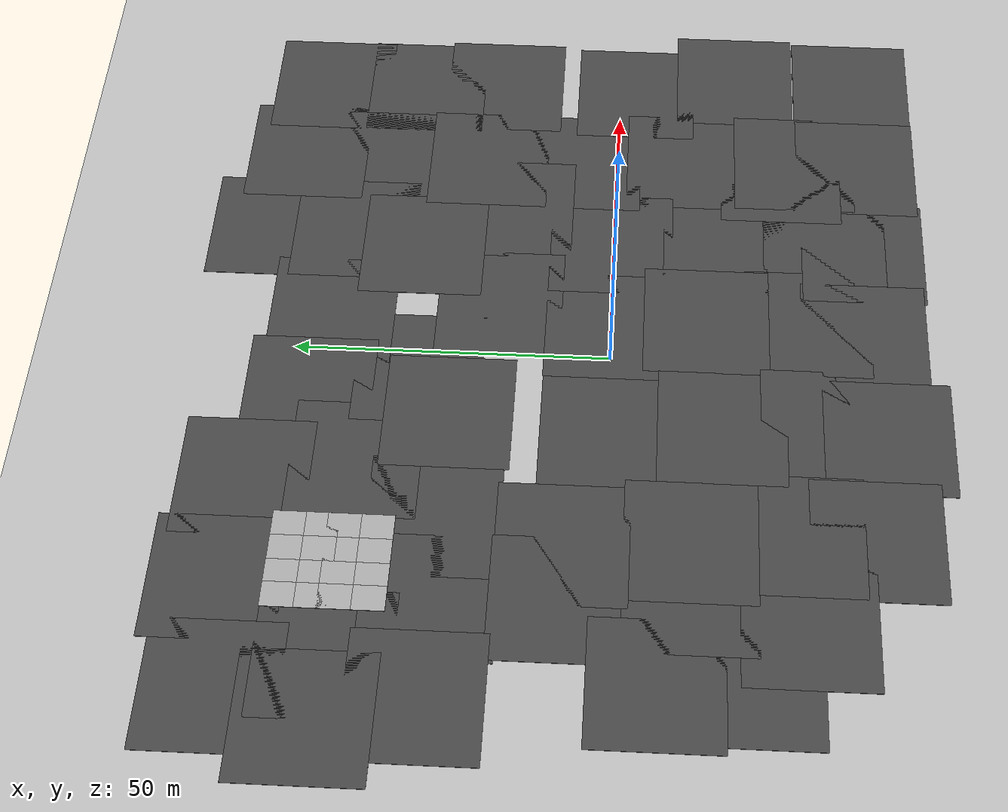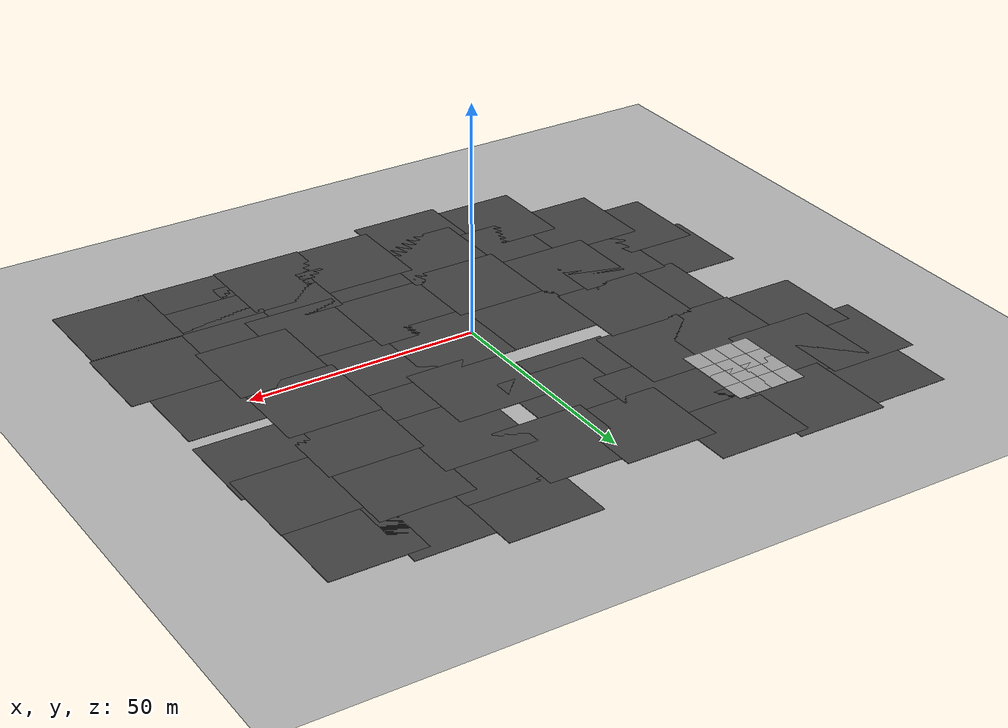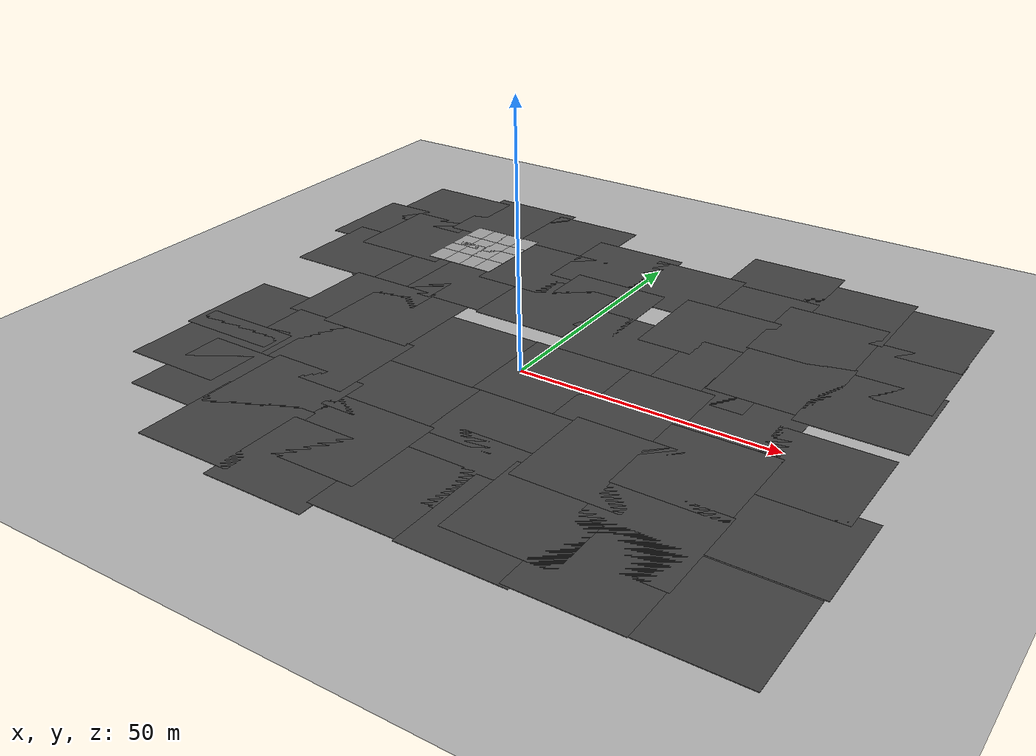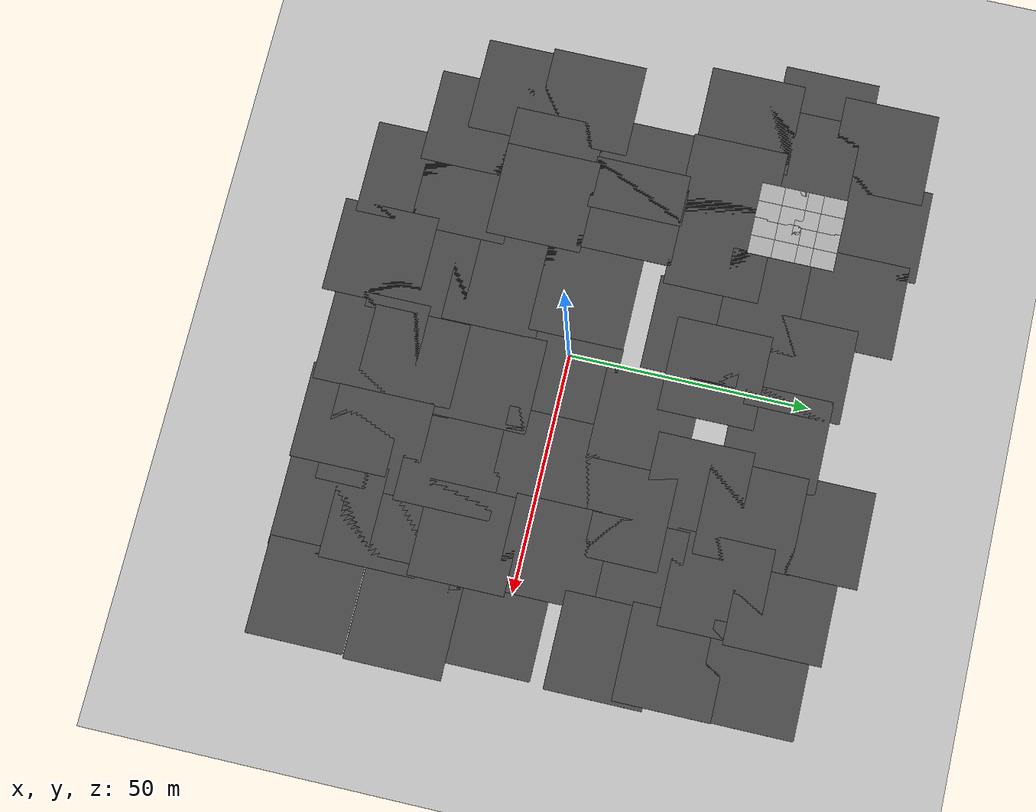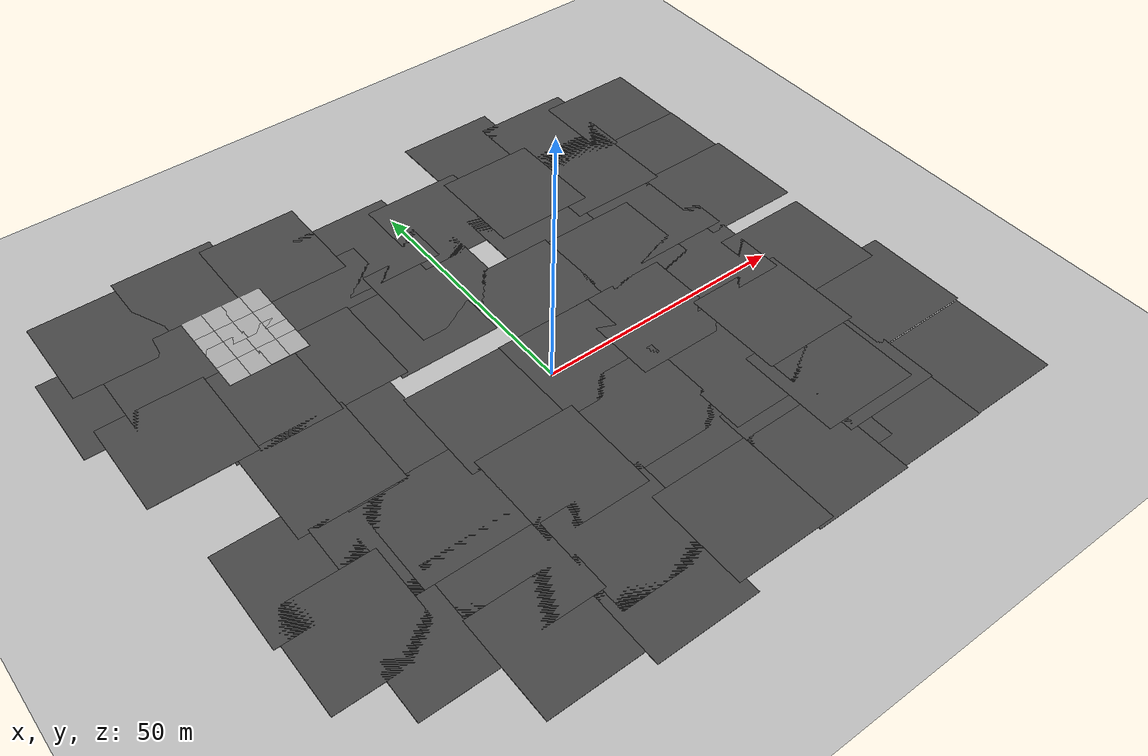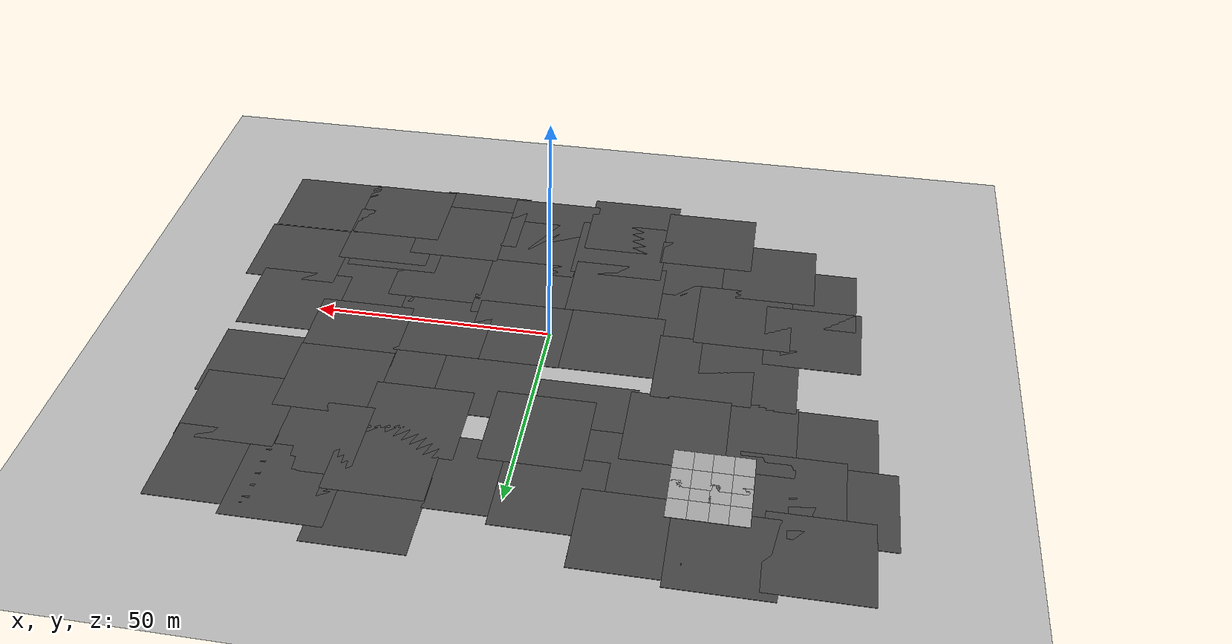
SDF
<sdf version="1.6">
 <world name="default">
  <light name="sun" type="directional">
   <pose>0 0 10 0 -0 0</pose>
   <diffuse>0.8 0.8 0.8 1</diffuse>
   <specular>0.1 0.1 0.1 1</specular>
   <attenuation>
    <range>1000</range>
    <constant>0.9</constant>
    <linear>0.01</linear>
    <quadratic>0.001</quadratic>
   </attenuation>
   <direction>-0.5 0.5 -1</direction>
  </light>
  <scene>
   <grid>0</grid>
   <origin_visual>0</origin_visual>
   <ambient>0.592 0.624 0.635 1</ambient>
   <sky><clouds><speed>12</speed></clouds></sky>
   <background>0.35 0.35 0.35 1</background>
   <shadows>1</shadows>
  </scene>
  <model name="ground_plane">
   <static>1</static>
   <link name="link">
    <collision name="collision">
     <geometry><plane><normal>0 0 1</normal><size>100 100</size></plane></geometry>
     <surface><friction><ode><mu>100</mu><mu2>50</mu2></ode></friction></surface>
    </collision>
    <visual name="visual">
     <cast_shadows>0</cast_shadows>
     <geometry><plane><normal>0 0 1</normal><size>100 100</size></plane></geometry>
     <material>
      <script><uri>file://media/materials/scripts/gazebo.material</uri><name>Gazebo/Grey</name></script>
     </material>
    </visual>
   </link>
  </model>
  <gravity>0 0 -9.8</gravity>
  <magnetic_field>6e-06 2.3e-05 -4.2e-05</magnetic_field>
  <atmosphere type="adiabatic"/>
  <physics name="default_physics" default="0" type="ode">
   <max_step_size>0.001</max_step_size>
   <real_time_factor>1</real_time_factor>
   <real_time_update_rate>1000</real_time_update_rate>
  </physics>
  <scene><ambient>0.4 0.4 0.4 1</ambient><background>0.7 0.7 0.7 1</background><shadows>1</shadows></scene>
  <spherical_coordinates>
   <surface_model>EARTH_WGS84</surface_model>
   <latitude_deg>49.9</latitude_deg>
   <longitude_deg>8.9</longitude_deg>
   <elevation>0</elevation>
   <heading_deg>0</heading_deg>
  </spherical_coordinates>
  <model name="asphalt_plane_0_clone_clone">
   <static>1</static>
   <link name="link">
    <collision name="collision"><geometry><box><size>20 20 0.1</size></box></geometry></collision>
    <visual name="visual">
     <cast_shadows>0</cast_shadows>
     <geometry><box><size>20 20 0.1</size></box></geometry>
     <material>
      <script>
       <uri>model://asphalt_plane/materials/scripts</uri>
       <uri>model://asphalt_plane/materials/textures</uri>
       <name>vrc/asphalt</name>
      </script>
     </material>
    </visual>
   </link>
   <pose>6.37821 0.583634 0 0 -0 0</pose>
  </model>
  <model name="asphalt_plane_0_clone_clone_0">
   <static>1</static>
   <link name="link">
    <collision name="collision"><geometry><box><size>20 20 0.1</size></box></geometry></collision>
    <visual name="visual">
     <cast_shadows>0</cast_shadows>
     <geometry><box><size>20 20 0.1</size></box></geometry>
     <material>
      <script>
       <uri>model://asphalt_plane/materials/scripts</uri>
       <uri>model://asphalt_plane/materials/textures</uri>
       <name>vrc/asphalt</name>
      </script>
     </material>
    </visual>
   </link>
   <pose>10.2031 18.113 0 0 -0 0</pose>
  </model>
  <model name="asphalt_plane_0_clone_clone_1">
   <static>1</static>
   <link name="link">
    <collision name="collision"><geometry><box><size>20 20 0.1</size></box></geometry></collision>
    <visual name="visual">
     <cast_shadows>0</cast_shadows>
     <geometry><box><size>20 20 0.1</size></box></geometry>
     <material>
      <script>
       <uri>model://asphalt_plane/materials/scripts</uri>
       <uri>model://asphalt_plane/materials/textures</uri>
       <name>vrc/asphalt</name>
      </script>
     </material>
    </visual>
   </link>
   <pose>22.9208 0.603421 0 0 -0 0</pose>
  </model>
  <model name="asphalt_plane_0_clone_clone_3">
   <static>1</static>
   <link name="link">
    <collision name="collision"><geometry><box><size>20 20 0.1</size></box></geometry></collision>
    <visual name="visual">
     <cast_shadows>0</cast_shadows>
     <geometry><box><size>20 20 0.1</size></box></geometry>
     <material>
      <script>
       <uri>model://asphalt_plane/materials/scripts</uri>
       <uri>model://asphalt_plane/materials/textures</uri>
       <name>vrc/asphalt</name>
      </script>
     </material>
    </visual>
   </link>
   <pose>8.11641 -15.0475 0 0 -0 0</pose>
  </model>
  <model name="asphalt_plane_0_clone_0">
   <static>1</static>
   <link name="link">
    <collision name="collision"><geometry><box><size>20 20 0.1</size></box></geometry></collision>
    <visual name="visual">
     <cast_shadows>0</cast_shadows>
     <geometry><box><size>20 20 0.1</size></box></geometry>
     <material>
      <script>
       <uri>model://asphalt_plane/materials/scripts</uri>
       <uri>model://asphalt_plane/materials/textures</uri>
       <name>vrc/asphalt</name>
      </script>
     </material>
    </visual>
   </link>
   <pose>-13.5558 0.477425 0 0 -0 0</pose>
  </model>
  <model name="asphalt_plane_0_clone_clone_1_clone">
   <static>1</static>
   <link name="link">
    <collision name="collision"><geometry><box><size>20 20 0.1</size></box></geometry></collision>
    <visual name="visual">
     <cast_shadows>0</cast_shadows>
     <geometry><box><size>20 20 0.1</size></box></geometry>
     <material>
      <script>
       <uri>model://asphalt_plane/materials/scripts</uri>
       <uri>model://asphalt_plane/materials/textures</uri>
       <name>vrc/asphalt</name>
      </script>
     </material>
    </visual>
   </link>
   <pose>26.991 -17.9924 0 0 -0 0</pose>
  </model>
  <model name="asphalt_plane_0_clone_clone_1_clone_0">
   <static>1</static>
   <link name="link">
    <collision name="collision"><geometry><box><size>20 20 0.1</size></box></geometry></collision>
    <visual name="visual">
     <cast_shadows>0</cast_shadows>
     <geometry><box><size>20 20 0.1</size></box></geometry>
     <material>
      <script>
       <uri>model://asphalt_plane/materials/scripts</uri>
       <uri>model://asphalt_plane/materials/textures</uri>
       <name>vrc/asphalt</name>
      </script>
     </material>
    </visual>
   </link>
   <pose>29.6101 17.2232 0 0 -0 0</pose>
  </model>
  <model name="asphalt_plane_0_clone_clone_1_clone_1">
   <static>1</static>
   <link name="link">
    <collision name="collision"><geometry><box><size>20 20 0.1</size></box></geometry></collision>
    <visual name="visual">
     <cast_shadows>0</cast_shadows>
     <geometry><box><size>20 20 0.1</size></box></geometry>
     <material>
      <script>
       <uri>model://asphalt_plane/materials/scripts</uri>
       <uri>model://asphalt_plane/materials/textures</uri>
       <name>vrc/asphalt</name>
      </script>
     </material>
    </visual>
   </link>
   <pose>40.1025 6.22208 0 0 -0 0</pose>
  </model>
  <model name="asphalt_plane_0_clone_clone_1_clone_2">
   <static>1</static>
   <link name="link">
    <collision name="collision"><geometry><box><size>20 20 0.1</size></box></geometry></collision>
    <visual name="visual">
     <cast_shadows>0</cast_shadows>
     <geometry><box><size>20 20 0.1</size></box></geometry>
     <material>
      <script>
       <uri>model://asphalt_plane/materials/scripts</uri>
       <uri>model://asphalt_plane/materials/textures</uri>
       <name>vrc/asphalt</name>
      </script>
     </material>
    </visual>
   </link>
   <pose>41.0911 -11.5315 0 0 -0 0</pose>
  </model>
  <model name="asphalt_plane_0_clone_clone_1_clone_3">
   <static>1</static>
   <link name="link">
    <collision name="collision"><geometry><box><size>20 20 0.1</size></box></geometry></collision>
    <visual name="visual">
     <cast_shadows>0</cast_shadows>
     <geometry><box><size>20 20 0.1</size></box></geometry>
     <material>
      <script>
       <uri>model://asphalt_plane/materials/scripts</uri>
       <uri>model://asphalt_plane/materials/textures</uri>
       <name>vrc/asphalt</name>
      </script>
     </material>
    </visual>
   </link>
   <pose>-31.7511 -12.9041 0 0 -0 0</pose>
  </model>
  <model name="asphalt_plane_0_clone_clone_1_clone_4">
   <static>1</static>
   <link name="link">
    <collision name="collision"><geometry><box><size>20 20 0.1</size></box></geometry></collision>
    <visual name="visual">
     <cast_shadows>0</cast_shadows>
     <geometry><box><size>20 20 0.1</size></box></geometry>
     <material>
      <script>
       <uri>model://asphalt_plane/materials/scripts</uri>
       <uri>model://asphalt_plane/materials/textures</uri>
       <name>vrc/asphalt</name>
      </script>
     </material>
    </visual>
   </link>
   <pose>-33.0894 6.09046 0 0 -0 0</pose>
  </model>
  <model name="asphalt_plane_0_clone_clone_1_clone_5">
   <static>1</static>
   <link name="link">
    <collision name="collision"><geometry><box><size>20 20 0.1</size></box></geometry></collision>
    <visual name="visual">
     <cast_shadows>0</cast_shadows>
     <geometry><box><size>20 20 0.1</size></box></geometry>
     <material>
      <script>
       <uri>model://asphalt_plane/materials/scripts</uri>
       <uri>model://asphalt_plane/materials/textures</uri>
       <name>vrc/asphalt</name>
      </script>
     </material>
    </visual>
   </link>
   <pose>-10.8691 24.6966 0 0 -0 0</pose>
  </model>
  <model name="asphalt_plane_0_clone_clone_1_clone_6">
   <static>1</static>
   <link name="link">
    <collision name="collision"><geometry><box><size>20 20 0.1</size></box></geometry></collision>
    <visual name="visual">
     <cast_shadows>0</cast_shadows>
     <geometry><box><size>20 20 0.1</size></box></geometry>
     <material>
      <script>
       <uri>model://asphalt_plane/materials/scripts</uri>
       <uri>model://asphalt_plane/materials/textures</uri>
       <name>vrc/asphalt</name>
      </script>
     </material>
    </visual>
   </link>
   <pose>-3 30 0 0 -0 0</pose>
  </model>
  <model name="asphalt_plane_0_clone_clone_1_clone_7">
   <static>1</static>
   <link name="link">
    <collision name="collision"><geometry><box><size>20 20 0.1</size></box></geometry></collision>
    <visual name="visual">
     <cast_shadows>0</cast_shadows>
     <geometry><box><size>20 20 0.1</size></box></geometry>
     <material>
      <script>
       <uri>model://asphalt_plane/materials/scripts</uri>
       <uri>model://asphalt_plane/materials/textures</uri>
       <name>vrc/asphalt</name>
      </script>
     </material>
    </visual>
   </link>
   <pose>-29.326 25.3742 0 0 -0 0</pose>
  </model>
  <model name="asphalt_plane_0_clone_clone_1_clone_8">
   <static>1</static>
   <link name="link">
    <collision name="collision"><geometry><box><size>20 20 0.1</size></box></geometry></collision>
    <visual name="visual">
     <cast_shadows>0</cast_shadows>
     <geometry><box><size>20 20 0.1</size></box></geometry>
     <material>
      <script>
       <uri>model://asphalt_plane/materials/scripts</uri>
       <uri>model://asphalt_plane/materials/textures</uri>
       <name>vrc/asphalt</name>
      </script>
     </material>
    </visual>
   </link>
   <pose>40.2279 21.9338 0 0 -0 0</pose>
  </model>
  <model name="asphalt_plane_0_clone_clone_1_clone_9">
   <static>1</static>
   <link name="link">
    <collision name="collision"><geometry><box><size>20 20 0.1</size></box></geometry></collision>
    <visual name="visual">
     <cast_shadows>0</cast_shadows>
     <geometry><box><size>20 20 0.1</size></box></geometry>
     <material>
      <script>
       <uri>model://asphalt_plane/materials/scripts</uri>
       <uri>model://asphalt_plane/materials/textures</uri>
       <name>vrc/asphalt</name>
      </script>
     </material>
    </visual>
   </link>
   <pose>21.4043 31.4114 0 0 -0 0</pose>
  </model>
  <model name="asphalt_plane_0_clone_clone_1_clone_3_clone">
   <static>1</static>
   <link name="link">
    <collision name="collision"><geometry><box><size>20 20 0.1</size></box></geometry></collision>
    <visual name="visual">
     <cast_shadows>0</cast_shadows>
     <geometry><box><size>20 20 0.1</size></box></geometry>
     <material>
      <script>
       <uri>model://asphalt_plane/materials/scripts</uri>
       <uri>model://asphalt_plane/materials/textures</uri>
       <name>vrc/asphalt</name>
      </script>
     </material>
    </visual>
   </link>
   <pose>-11.8014 -17.5637 0 0 -0 0</pose>
  </model>
  <model name="asphalt_plane_0_clone_clone_1_clone_3_clone_0">
   <static>1</static>
   <link name="link">
    <collision name="collision"><geometry><box><size>20 20 0.1</size></box></geometry></collision>
    <visual name="visual">
     <cast_shadows>0</cast_shadows>
     <geometry><box><size>20 20 0.1</size></box></geometry>
     <material>
      <script>
       <uri>model://asphalt_plane/materials/scripts</uri>
       <uri>model://asphalt_plane/materials/textures</uri>
       <name>vrc/asphalt</name>
      </script>
     </material>
    </visual>
   </link>
   <pose>41.4998 -29.7064 0 0 -0 0</pose>
  </model>
  <model name="asphalt_plane_0_clone_clone_1_clone_3_clone_1">
   <static>1</static>
   <link name="link">
    <collision name="collision"><geometry><box><size>20 20 0.1</size></box></geometry></collision>
    <visual name="visual">
     <cast_shadows>0</cast_shadows>
     <geometry><box><size>20 20 0.1</size></box></geometry>
     <material>
      <script>
       <uri>model://asphalt_plane/materials/scripts</uri>
       <uri>model://asphalt_plane/materials/textures</uri>
       <name>vrc/asphalt</name>
      </script>
     </material>
    </visual>
   </link>
   <pose>26.1918 -34.3701 0 0 -0 0</pose>
  </model>
  <model name="asphalt_plane_0_clone_clone_1_clone_3_clone_2">
   <static>1</static>
   <link name="link">
    <collision name="collision"><geometry><box><size>20 20 0.1</size></box></geometry></collision>
    <visual name="visual">
     <cast_shadows>0</cast_shadows>
     <geometry><box><size>20 20 0.1</size></box></geometry>
     <material>
      <script>
       <uri>model://asphalt_plane/materials/scripts</uri>
       <uri>model://asphalt_plane/materials/textures</uri>
       <name>vrc/asphalt</name>
      </script>
     </material>
    </visual>
   </link>
   <pose>41.1356 -40.2 0 0 -0 0</pose>
  </model>
  <model name="asphalt_plane_0_clone_clone_1_clone_3_clone_3">
   <static>1</static>
   <link name="link">
    <collision name="collision"><geometry><box><size>20 20 0.1</size></box></geometry></collision>
    <visual name="visual">
     <cast_shadows>0</cast_shadows>
     <geometry><box><size>20 20 0.1</size></box></geometry>
     <material>
      <script>
       <uri>model://asphalt_plane/materials/scripts</uri>
       <uri>model://asphalt_plane/materials/textures</uri>
       <name>vrc/asphalt</name>
      </script>
     </material>
    </visual>
   </link>
   <pose>22.9353 -40.6198 0 0 -0 0</pose>
  </model>
  <model name="asphalt_plane_0_clone_clone_1_clone_3_clone_4">
   <static>1</static>
   <link name="link">
    <collision name="collision"><geometry><box><size>20 20 0.1</size></box></geometry></collision>
    <visual name="visual">
     <cast_shadows>0</cast_shadows>
     <geometry><box><size>20 20 0.1</size></box></geometry>
     <material>
      <script>
       <uri>model://asphalt_plane/materials/scripts</uri>
       <uri>model://asphalt_plane/materials/textures</uri>
       <name>vrc/asphalt</name>
      </script>
     </material>
    </visual>
   </link>
   <pose>8.35018 -31.2659 0 0 -0 0</pose>
  </model>
  <model name="asphalt_plane_0_clone_clone_1_clone_3_clone_5">
   <static>1</static>
   <link name="link">
    <collision name="collision"><geometry><box><size>20 20 0.1</size></box></geometry></collision>
    <visual name="visual">
     <cast_shadows>0</cast_shadows>
     <geometry><box><size>20 20 0.1</size></box></geometry>
     <material>
      <script>
       <uri>model://asphalt_plane/materials/scripts</uri>
       <uri>model://asphalt_plane/materials/textures</uri>
       <name>vrc/asphalt</name>
      </script>
     </material>
    </visual>
   </link>
   <pose>6.27442 -40.183 0 0 -0 0</pose>
  </model>
  <model name="asphalt_plane_0_clone_clone_1_clone_3_clone_6">
   <static>1</static>
   <link name="link">
    <collision name="collision"><geometry><box><size>20 20 0.1</size></box></geometry></collision>
    <visual name="visual">
     <cast_shadows>0</cast_shadows>
     <geometry><box><size>20 20 0.1</size></box></geometry>
     <material>
      <script>
       <uri>model://asphalt_plane/materials/scripts</uri>
       <uri>model://asphalt_plane/materials/textures</uri>
       <name>vrc/asphalt</name>
      </script>
     </material>
    </visual>
   </link>
   <pose>-10.7792 -33.517 0 0 -0 0</pose>
  </model>
  <model name="asphalt_plane_0_clone_clone_1_clone_3_clone_7">
   <static>1</static>
   <link name="link">
    <collision name="collision"><geometry><box><size>20 20 0.1</size></box></geometry></collision>
    <visual name="visual">
     <cast_shadows>0</cast_shadows>
     <geometry><box><size>20 20 0.1</size></box></geometry>
     <material>
      <script>
       <uri>model://asphalt_plane/materials/scripts</uri>
       <uri>model://asphalt_plane/materials/textures</uri>
       <name>vrc/asphalt</name>
      </script>
     </material>
    </visual>
   </link>
   <pose>-29.9691 -28.748 0 0 -0 0</pose>
  </model>
  <model name="asphalt_plane_0_clone_clone_1_clone_3_clone_8">
   <static>1</static>
   <link name="link">
    <collision name="collision"><geometry><box><size>20 20 0.1</size></box></geometry></collision>
    <visual name="visual">
     <cast_shadows>0</cast_shadows>
     <geometry><box><size>20 20 0.1</size></box></geometry>
     <material>
      <script>
       <uri>model://asphalt_plane/materials/scripts</uri>
       <uri>model://asphalt_plane/materials/textures</uri>
       <name>vrc/asphalt</name>
      </script>
     </material>
    </visual>
   </link>
   <pose>-30.2733 -40.503 0 0 -0 0</pose>
  </model>
  <model name="asphalt_plane_0_clone_clone_1_clone_3_clone_9">
   <static>1</static>
   <link name="link">
    <collision name="collision"><geometry><box><size>20 20 0.1</size></box></geometry></collision>
    <visual name="visual">
     <cast_shadows>0</cast_shadows>
     <geometry><box><size>20 20 0.1</size></box></geometry>
     <material>
      <script>
       <uri>model://asphalt_plane/materials/scripts</uri>
       <uri>model://asphalt_plane/materials/textures</uri>
       <name>vrc/asphalt</name>
      </script>
     </material>
    </visual>
   </link>
   <pose>-12.4234 -43.1011 0 0 -0 0</pose>
  </model>
  <model name="asphalt_plane_0_clone_clone_1_clone_3_clone_10">
   <static>1</static>
   <link name="link">
    <collision name="collision"><geometry><box><size>20 20 0.1</size></box></geometry></collision>
    <visual name="visual">
     <cast_shadows>0</cast_shadows>
     <geometry><box><size>20 20 0.1</size></box></geometry>
     <material>
      <script>
       <uri>model://asphalt_plane/materials/scripts</uri>
       <uri>model://asphalt_plane/materials/textures</uri>
       <name>vrc/asphalt</name>
      </script>
     </material>
    </visual>
   </link>
   <pose>-39.914 -12.9126 0 0 -0 0</pose>
  </model>
  <model name="asphalt_plane_0_clone_clone_1_clone_3_clone_11">
   <static>1</static>
   <link name="link">
    <collision name="collision"><geometry><box><size>20 20 0.1</size></box></geometry></collision>
    <visual name="visual">
     <cast_shadows>0</cast_shadows>
     <geometry><box><size>20 20 0.1</size></box></geometry>
     <material>
      <script>
       <uri>model://asphalt_plane/materials/scripts</uri>
       <uri>model://asphalt_plane/materials/textures</uri>
       <name>vrc/asphalt</name>
      </script>
     </material>
    </visual>
   </link>
   <pose>39.7398 39.4432 0 0 -0 0</pose>
  </model>
  <model name="asphalt_plane_0_clone_clone_1_clone_3_clone_12">
   <static>1</static>
   <link name="link">
    <collision name="collision"><geometry><box><size>20 20 0.1</size></box></geometry></collision>
    <visual name="visual">
     <cast_shadows>0</cast_shadows>
     <geometry><box><size>20 20 0.1</size></box></geometry>
     <material>
      <script>
       <uri>model://asphalt_plane/materials/scripts</uri>
       <uri>model://asphalt_plane/materials/textures</uri>
       <name>vrc/asphalt</name>
      </script>
     </material>
    </visual>
   </link>
   <pose>-41.9881 6.39224 0 0 -0 0</pose>
  </model>
  <model name="asphalt_plane_0_clone_clone_1_clone_3_clone_13">
   <static>1</static>
   <link name="link">
    <collision name="collision"><geometry><box><size>20 20 0.1</size></box></geometry></collision>
    <visual name="visual">
     <cast_shadows>0</cast_shadows>
     <geometry><box><size>20 20 0.1</size></box></geometry>
     <material>
      <script>
       <uri>model://asphalt_plane/materials/scripts</uri>
       <uri>model://asphalt_plane/materials/textures</uri>
       <name>vrc/asphalt</name>
      </script>
     </material>
    </visual>
   </link>
   <pose>-42.5242 24.9399 0 0 -0 0</pose>
  </model>
  <model name="asphalt_plane_0_clone_clone_1_clone_3_clone_14">
   <static>1</static>
   <link name="link">
    <collision name="collision"><geometry><box><size>20 20 0.1</size></box></geometry></collision>
    <visual name="visual">
     <cast_shadows>0</cast_shadows>
     <geometry><box><size>20 20 0.1</size></box></geometry>
     <material>
      <script>
       <uri>model://asphalt_plane/materials/scripts</uri>
       <uri>model://asphalt_plane/materials/textures</uri>
       <name>vrc/asphalt</name>
      </script>
     </material>
    </visual>
   </link>
   <pose>-19.9765 38.1058 0 0 -0 0</pose>
  </model>
  <model name="asphalt_plane_0_clone_clone_1_clone_3_clone_15">
   <static>1</static>
   <link name="link">
    <collision name="collision"><geometry><box><size>20 20 0.1</size></box></geometry></collision>
    <visual name="visual">
     <cast_shadows>0</cast_shadows>
     <geometry><box><size>20 20 0.1</size></box></geometry>
     <material>
      <script>
       <uri>model://asphalt_plane/materials/scripts</uri>
       <uri>model://asphalt_plane/materials/textures</uri>
       <name>vrc/asphalt</name>
      </script>
     </material>
    </visual>
   </link>
   <pose>38.8642 -27.432 0 0 -0 0</pose>
  </model>
  <model name="asphalt_plane_0_clone_clone_1_clone_3_clone_11_clone">
   <static>1</static>
   <link name="link">
    <collision name="collision"><geometry><box><size>20 20 0.1</size></box></geometry></collision>
    <visual name="visual">
     <cast_shadows>0</cast_shadows>
     <geometry><box><size>20 20 0.1</size></box></geometry>
     <material>
      <script>
       <uri>model://asphalt_plane/materials/scripts</uri>
       <uri>model://asphalt_plane/materials/textures</uri>
       <name>vrc/asphalt</name>
      </script>
     </material>
    </visual>
   </link>
   <pose>24.1835 43.1447 0 0 -0 0</pose>
  </model>
  <model name="asphalt_plane_0_clone_clone_1_clone_3_clone_11_clone_0">
   <static>1</static>
   <link name="link">
    <collision name="collision"><geometry><box><size>20 20 0.1</size></box></geometry></collision>
    <visual name="visual">
     <cast_shadows>0</cast_shadows>
     <geometry><box><size>20 20 0.1</size></box></geometry>
     <material>
      <script>
       <uri>model://asphalt_plane/materials/scripts</uri>
       <uri>model://asphalt_plane/materials/textures</uri>
       <name>vrc/asphalt</name>
      </script>
     </material>
    </visual>
   </link>
   <pose>40.5649 52.9156 0 0 -0 0</pose>
  </model>
  <model name="asphalt_plane_0_clone_clone_1_clone_3_clone_11_clone_1">
   <static>1</static>
   <link name="link">
    <collision name="collision"><geometry><box><size>20 20 0.1</size></box></geometry></collision>
    <visual name="visual">
     <cast_shadows>0</cast_shadows>
     <geometry><box><size>20 20 0.1</size></box></geometry>
     <material>
      <script>
       <uri>model://asphalt_plane/materials/scripts</uri>
       <uri>model://asphalt_plane/materials/textures</uri>
       <name>vrc/asphalt</name>
      </script>
     </material>
    </visual>
   </link>
   <pose>7.57971 44.8403 0 0 -0 0</pose>
  </model>
  <model name="asphalt_plane_0_clone_clone_1_clone_3_clone_11_clone_0_clone">
   <static>1</static>
   <link name="link">
    <collision name="collision"><geometry><box><size>20 20 0.1</size></box></geometry></collision>
    <visual name="visual">
     <cast_shadows>0</cast_shadows>
     <geometry><box><size>20 20 0.1</size></box></geometry>
     <material>
      <script>
       <uri>model://asphalt_plane/materials/scripts</uri>
       <uri>model://asphalt_plane/materials/textures</uri>
       <name>vrc/asphalt</name>
      </script>
     </material>
    </visual>
   </link>
   <pose>24.047 56.8673 0 0 -0 0</pose>
  </model>
  <model name="asphalt_plane_1">
   <static>1</static>
   <link name="link">
    <collision name="collision"><geometry><box><size>20 20 0.1</size></box></geometry></collision>
    <visual name="visual">
     <cast_shadows>0</cast_shadows>
     <geometry><box><size>20 20 0.1</size></box></geometry>
     <material>
      <script>
       <uri>model://asphalt_plane/materials/scripts</uri>
       <uri>model://asphalt_plane/materials/textures</uri>
       <name>vrc/asphalt</name>
      </script>
     </material>
    </visual>
   </link>
   <pose>60.0043 -19.8285 0 0 -0 0</pose>
  </model>
  <model name="mud_box">
   <static>1</static>
   <link name="link">
    <collision name="collision"><geometry><box><size>8 10 0.2</size></box></geometry></collision>
    <visual name="visual_1">
     <pose>-2 2.5 0 0 -0 0</pose>
     <cast_shadows>0</cast_shadows>
     <geometry><box><size>4 5 0.2</size></box></geometry>
     <material>
      <script>
       <uri>model://mud_box/materials/scripts</uri>
       <uri>model://mud_box/materials/textures</uri>
       <name>vrc/mud</name>
      </script>
     </material>
    </visual>
    <visual name="visual_2">
     <pose>2 2.5 0 0 -0 0</pose>
     <cast_shadows>0</cast_shadows>
     <geometry><box><size>4 5 0.2</size></box></geometry>
     <material>
      <script>
       <uri>model://mud_box/materials/scripts</uri>
       <uri>model://mud_box/materials/textures</uri>
       <name>vrc/mud</name>
      </script>
     </material>
    </visual>
    <visual name="visual_3">
     <pose>2 -2.5 0 0 -0 0</pose>
     <cast_shadows>0</cast_shadows>
     <geometry><box><size>4 5 0.2</size></box></geometry>
     <material>
      <script>
       <uri>model://mud_box/materials/scripts</uri>
       <uri>model://mud_box/materials/textures</uri>
       <name>vrc/mud</name>
      </script>
     </material>
    </visual>
    <visual name="visual_4">
     <pose>-2 -2.5 0 0 -0 0</pose>
     <cast_shadows>0</cast_shadows>
     <geometry><box><size>4 5 0.2</size></box></geometry>
     <material>
      <script>
       <uri>model://mud_box/materials/scripts</uri>
       <uri>model://mud_box/materials/textures</uri>
       <name>vrc/mud</name>
      </script>
     </material>
    </visual>
   </link>
   <pose>-33.5181 35.9736 0 0 -0 0</pose>
  </model>
  <model name="mud_box_clone">
   <static>1</static>
   <link name="link">
    <collision name="collision"><geometry><box><size>8 10 0.2</size></box></geometry></collision>
    <visual name="visual_1">
     <pose>-2 2.5 0 0 -0 0</pose>
     <cast_shadows>0</cast_shadows>
     <geometry><box><size>4 5 0.2</size></box></geometry>
     <material>
      <script>
       <uri>model://mud_box/materials/scripts</uri>
       <uri>model://mud_box/materials/textures</uri>
       <name>vrc/mud</name>
      </script>
     </material>
    </visual>
    <visual name="visual_2">
     <pose>2 2.5 0 0 -0 0</pose>
     <cast_shadows>0</cast_shadows>
     <geometry><box><size>4 5 0.2</size></box></geometry>
     <material>
      <script>
       <uri>model://mud_box/materials/scripts</uri>
       <uri>model://mud_box/materials/textures</uri>
       <name>vrc/mud</name>
      </script>
     </material>
    </visual>
    <visual name="visual_3">
     <pose>2 -2.5 0 0 -0 0</pose>
     <cast_shadows>0</cast_shadows>
     <geometry><box><size>4 5 0.2</size></box></geometry>
     <material>
      <script>
       <uri>model://mud_box/materials/scripts</uri>
       <uri>model://mud_box/materials/textures</uri>
       <name>vrc/mud</name>
      </script>
     </material>
    </visual>
    <visual name="visual_4">
     <pose>-2 -2.5 0 0 -0 0</pose>
     <cast_shadows>0</cast_shadows>
     <geometry><box><size>4 5 0.2</size></box></geometry>
     <material>
      <script>
       <uri>model://mud_box/materials/scripts</uri>
       <uri>model://mud_box/materials/textures</uri>
       <name>vrc/mud</name>
      </script>
     </material>
    </visual>
   </link>
   <pose>-41.1763 35.9619 0 0 -0 0</pose>
  </model>
  <model name="mud_box_clone_0">
   <static>1</static>
   <link name="link">
    <collision name="collision"><geometry><box><size>8 10 0.2</size></box></geometry></collision>
    <visual name="visual_1">
     <pose>-2 2.5 0 0 -0 0</pose>
     <cast_shadows>0</cast_shadows>
     <geometry><box><size>4 5 0.2</size></box></geometry>
     <material>
      <script>
       <uri>model://mud_box/materials/scripts</uri>
       <uri>model://mud_box/materials/textures</uri>
       <name>vrc/mud</name>
      </script>
     </material>
    </visual>
    <visual name="visual_2">
     <pose>2 2.5 0 0 -0 0</pose>
     <cast_shadows>0</cast_shadows>
     <geometry><box><size>4 5 0.2</size></box></geometry>
     <material>
      <script>
       <uri>model://mud_box/materials/scripts</uri>
       <uri>model://mud_box/materials/textures</uri>
       <name>vrc/mud</name>
      </script>
     </material>
    </visual>
    <visual name="visual_3">
     <pose>2 -2.5 0 0 -0 0</pose>
     <cast_shadows>0</cast_shadows>
     <geometry><box><size>4 5 0.2</size></box></geometry>
     <material>
      <script>
       <uri>model://mud_box/materials/scripts</uri>
       <uri>model://mud_box/materials/textures</uri>
       <name>vrc/mud</name>
      </script>
     </material>
    </visual>
    <visual name="visual_4">
     <pose>-2 -2.5 0 0 -0 0</pose>
     <cast_shadows>0</cast_shadows>
     <geometry><box><size>4 5 0.2</size></box></geometry>
     <material>
      <script>
       <uri>model://mud_box/materials/scripts</uri>
       <uri>model://mud_box/materials/textures</uri>
       <name>vrc/mud</name>
      </script>
     </material>
    </visual>
   </link>
   <pose>-41.1857 44.2721 0 0 -0 0</pose>
  </model>
  <model name="mud_box_clone_1">
   <static>1</static>
   <link name="link">
    <collision name="collision"><geometry><box><size>8 10 0.2</size></box></geometry></collision>
    <visual name="visual_1">
     <pose>-2 2.5 0 0 -0 0</pose>
     <cast_shadows>0</cast_shadows>
     <geometry><box><size>4 5 0.2</size></box></geometry>
     <material>
      <script>
       <uri>model://mud_box/materials/scripts</uri>
       <uri>model://mud_box/materials/textures</uri>
       <name>vrc/mud</name>
      </script>
     </material>
    </visual>
    <visual name="visual_2">
     <pose>2 2.5 0 0 -0 0</pose>
     <cast_shadows>0</cast_shadows>
     <geometry><box><size>4 5 0.2</size></box></geometry>
     <material>
      <script>
       <uri>model://mud_box/materials/scripts</uri>
       <uri>model://mud_box/materials/textures</uri>
       <name>vrc/mud</name>
      </script>
     </material>
    </visual>
    <visual name="visual_3">
     <pose>2 -2.5 0 0 -0 0</pose>
     <cast_shadows>0</cast_shadows>
     <geometry><box><size>4 5 0.2</size></box></geometry>
     <material>
      <script>
       <uri>model://mud_box/materials/scripts</uri>
       <uri>model://mud_box/materials/textures</uri>
       <name>vrc/mud</name>
      </script>
     </material>
    </visual>
    <visual name="visual_4">
     <pose>-2 -2.5 0 0 -0 0</pose>
     <cast_shadows>0</cast_shadows>
     <geometry><box><size>4 5 0.2</size></box></geometry>
     <material>
      <script>
       <uri>model://mud_box/materials/scripts</uri>
       <uri>model://mud_box/materials/textures</uri>
       <name>vrc/mud</name>
      </script>
     </material>
    </visual>
   </link>
   <pose>-33.5131 44.2491 0 0 -0 0</pose>
  </model>
  <model name="asphalt_plane_1_clone">
   <static>1</static>
   <link name="link">
    <collision name="collision"><geometry><box><size>20 20 0.1</size></box></geometry></collision>
    <visual name="visual">
     <cast_shadows>0</cast_shadows>
     <geometry><box><size>20 20 0.1</size></box></geometry>
     <material>
      <script>
       <uri>model://asphalt_plane/materials/scripts</uri>
       <uri>model://asphalt_plane/materials/textures</uri>
       <name>vrc/asphalt</name>
      </script>
     </material>
    </visual>
   </link>
   <pose>56.9752 20.2287 0 0 -0 0</pose>
  </model>
  <model name="asphalt_plane_1_clone_0">
   <static>1</static>
   <link name="link">
    <collision name="collision"><geometry><box><size>20 20 0.1</size></box></geometry></collision>
    <visual name="visual">
     <cast_shadows>0</cast_shadows>
     <geometry><box><size>20 20 0.1</size></box></geometry>
     <material>
      <script>
       <uri>model://asphalt_plane/materials/scripts</uri>
       <uri>model://asphalt_plane/materials/textures</uri>
       <name>vrc/asphalt</name>
      </script>
     </material>
    </visual>
   </link>
   <pose>56.1858 33.8725 0 0 -0 0</pose>
  </model>
  <model name="asphalt_plane_1_clone_1">
   <static>1</static>
   <link name="link">
    <collision name="collision"><geometry><box><size>20 20 0.1</size></box></geometry></collision>
    <visual name="visual">
     <cast_shadows>0</cast_shadows>
     <geometry><box><size>20 20 0.1</size></box></geometry>
     <material>
      <script>
       <uri>model://asphalt_plane/materials/scripts</uri>
       <uri>model://asphalt_plane/materials/textures</uri>
       <name>vrc/asphalt</name>
      </script>
     </material>
    </visual>
   </link>
   <pose>56.0408 50.4969 0 0 -0 0</pose>
  </model>
  <model name="asphalt_plane_1_clone_2">
   <static>1</static>
   <link name="link">
    <collision name="collision"><geometry><box><size>20 20 0.1</size></box></geometry></collision>
    <visual name="visual">
     <cast_shadows>0</cast_shadows>
     <geometry><box><size>20 20 0.1</size></box></geometry>
     <material>
      <script>
       <uri>model://asphalt_plane/materials/scripts</uri>
       <uri>model://asphalt_plane/materials/textures</uri>
       <name>vrc/asphalt</name>
      </script>
     </material>
    </visual>
   </link>
   <pose>56.2979 -2.61646 0 0 -0 0</pose>
  </model>
  <model name="asphalt_plane_0_clone_clone_1_clone_3_clone_2_clone">
   <static>1</static>
   <link name="link">
    <collision name="collision"><geometry><box><size>20 20 0.1</size></box></geometry></collision>
    <visual name="visual">
     <cast_shadows>0</cast_shadows>
     <geometry><box><size>20 20 0.1</size></box></geometry>
     <material>
      <script>
       <uri>model://asphalt_plane/materials/scripts</uri>
       <uri>model://asphalt_plane/materials/textures</uri>
       <name>vrc/asphalt</name>
      </script>
     </material>
    </visual>
   </link>
   <pose>59.3685 -40.0699 0 0 -0 0</pose>
  </model>
  <model name="asphalt_plane_0_clone_clone_1_clone_3_clone_12_clone">
   <static>1</static>
   <link name="link">
    <collision name="collision"><geometry><box><size>20 20 0.1</size></box></geometry></collision>
    <visual name="visual">
     <cast_shadows>0</cast_shadows>
     <geometry><box><size>20 20 0.1</size></box></geometry>
     <material>
      <script>
       <uri>model://asphalt_plane/materials/scripts</uri>
       <uri>model://asphalt_plane/materials/textures</uri>
       <name>vrc/asphalt</name>
      </script>
     </material>
    </visual>
   </link>
   <pose>-44.401 -30.0859 0 0 -0 0</pose>
  </model>
  <model name="asphalt_plane_0_clone_clone_1_clone_3_clone_12_clone_0">
   <static>1</static>
   <link name="link">
    <collision name="collision"><geometry><box><size>20 20 0.1</size></box></geometry></collision>
    <visual name="visual">
     <cast_shadows>0</cast_shadows>
     <geometry><box><size>20 20 0.1</size></box></geometry>
     <material>
      <script>
       <uri>model://asphalt_plane/materials/scripts</uri>
       <uri>model://asphalt_plane/materials/textures</uri>
       <name>vrc/asphalt</name>
      </script>
     </material>
    </visual>
   </link>
   <pose>-52.1037 39.1152 0 0 -0 0</pose>
  </model>
  <model name="asphalt_plane_0_clone_clone_1_clone_3_clone_12_clone_1">
   <static>1</static>
   <link name="link">
    <collision name="collision"><geometry><box><size>20 20 0.1</size></box></geometry></collision>
    <visual name="visual">
     <cast_shadows>0</cast_shadows>
     <geometry><box><size>20 20 0.1</size></box></geometry>
     <material>
      <script>
       <uri>model://asphalt_plane/materials/scripts</uri>
       <uri>model://asphalt_plane/materials/textures</uri>
       <name>vrc/asphalt</name>
      </script>
     </material>
    </visual>
   </link>
   <pose>-8.09974 46.8393 0 0 -0 0</pose>
  </model>
  <model name="asphalt_plane_0_clone_clone_1_clone_3_clone_12_clone_2">
   <static>1</static>
   <link name="link">
    <collision name="collision"><geometry><box><size>20 20 0.1</size></box></geometry></collision>
    <visual name="visual">
     <cast_shadows>0</cast_shadows>
     <geometry><box><size>20 20 0.1</size></box></geometry>
     <material>
      <script>
       <uri>model://asphalt_plane/materials/scripts</uri>
       <uri>model://asphalt_plane/materials/textures</uri>
       <name>vrc/asphalt</name>
      </script>
     </material>
    </visual>
   </link>
   <pose>-23.7655 54.632 0 0 -0 0</pose>
  </model>
  <model name="asphalt_plane_0_clone_clone_1_clone_3_clone_12_clone_3">
   <static>1</static>
   <link name="link">
    <collision name="collision"><geometry><box><size>20 20 0.1</size></box></geometry></collision>
    <visual name="visual">
     <cast_shadows>0</cast_shadows>
     <geometry><box><size>20 20 0.1</size></box></geometry>
     <material>
      <script>
       <uri>model://asphalt_plane/materials/scripts</uri>
       <uri>model://asphalt_plane/materials/textures</uri>
       <name>vrc/asphalt</name>
      </script>
     </material>
    </visual>
   </link>
   <pose>-57.8809 25.5762 0 0 -0 0</pose>
  </model>
  <model name="asphalt_plane_0_clone_clone_1_clone_3_clone_12_clone_4">
   <static>1</static>
   <link name="link">
    <collision name="collision"><geometry><box><size>20 20 0.1</size></box></geometry></collision>
    <visual name="visual">
     <cast_shadows>0</cast_shadows>
     <geometry><box><size>20 20 0.1</size></box></geometry>
     <material>
      <script>
       <uri>model://asphalt_plane/materials/scripts</uri>
       <uri>model://asphalt_plane/materials/textures</uri>
       <name>vrc/asphalt</name>
      </script>
     </material>
    </visual>
   </link>
   <pose>-54.5213 -8.16502 0 0 -0 0</pose>
  </model>
  <model name="asphalt_plane_0_clone_clone_1_clone_3_clone_12_clone_5">
   <static>1</static>
   <link name="link">
    <collision name="collision"><geometry><box><size>20 20 0.1</size></box></geometry></collision>
    <visual name="visual">
     <cast_shadows>0</cast_shadows>
     <geometry><box><size>20 20 0.1</size></box></geometry>
     <material>
      <script>
       <uri>model://asphalt_plane/materials/scripts</uri>
       <uri>model://asphalt_plane/materials/textures</uri>
       <name>vrc/asphalt</name>
      </script>
     </material>
    </visual>
   </link>
   <pose>-53.3933 -22.1091 0 0 -0 0</pose>
  </model>
  <model name="asphalt_plane_0_clone_clone_1_clone_3_clone_12_clone_6">
   <static>1</static>
   <link name="link">
    <collision name="collision"><geometry><box><size>20 20 0.1</size></box></geometry></collision>
    <visual name="visual">
     <cast_shadows>0</cast_shadows>
     <geometry><box><size>20 20 0.1</size></box></geometry>
     <material>
      <script>
       <uri>model://asphalt_plane/materials/scripts</uri>
       <uri>model://asphalt_plane/materials/textures</uri>
       <name>vrc/asphalt</name>
      </script>
     </material>
    </visual>
   </link>
   <pose>-40.7343 56.2327 0 0 -0 0</pose>
  </model>
  <model name="asphalt_plane_0_clone_clone_1_clone_3_clone_12_clone_7">
   <static>1</static>
   <link name="link">
    <collision name="collision"><geometry><box><size>20 20 0.1</size></box></geometry></collision>
    <visual name="visual">
     <cast_shadows>0</cast_shadows>
     <geometry><box><size>20 20 0.1</size></box></geometry>
     <material>
      <script>
       <uri>model://asphalt_plane/materials/scripts</uri>
       <uri>model://asphalt_plane/materials/textures</uri>
       <name>vrc/asphalt</name>
      </script>
     </material>
    </visual>
   </link>
   <pose>-57.6009 54.3864 0 0 -0 0</pose>
  </model>
  <model name="asphalt_plane_0_clone_clone_1_clone_3_clone_12_clone_8">
   <static>1</static>
   <link name="link">
    <collision name="collision"><geometry><box><size>20 20 0.1</size></box></geometry></collision>
    <visual name="visual">
     <cast_shadows>0</cast_shadows>
     <geometry><box><size>20 20 0.1</size></box></geometry>
     <material>
      <script>
       <uri>model://asphalt_plane/materials/scripts</uri>
       <uri>model://asphalt_plane/materials/textures</uri>
       <name>vrc/asphalt</name>
      </script>
     </material>
    </visual>
   </link>
   <pose>-61.6017 40.7819 0 0 -0 0</pose>
  </model>
  <audio><device>default</device></audio>
 </world>
</sdf>
